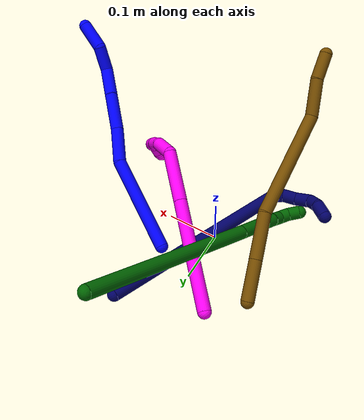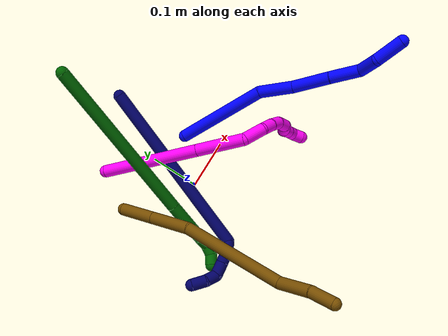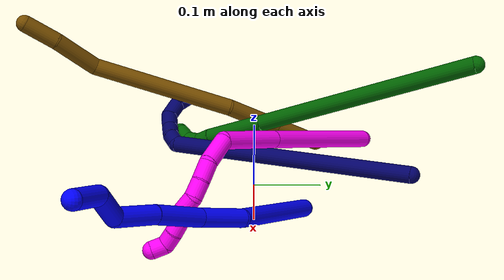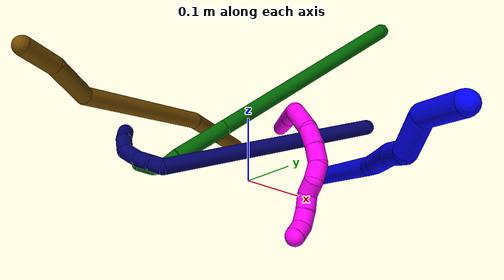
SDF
<sdf version="1.7">
 <world name="default">
  <model name="1">
   <static>0</static>
   <link name="1">
    <collision name="collision-cylinder-e_1_1_4">
     <pose>0.036717 -0.005946 0.086117 0.068931 0.402166 0.014056</pose>
     <geometry><cylinder><radius>0.0125</radius><length>0.187612</length></cylinder></geometry>
     <surface>
      <friction><ode><mu>1.16</mu><mu2>1.16</mu2><slip1>0</slip1><slip2>0</slip2></ode></friction>
      <contact><ode><kp>1e+06</kp><kd>1</kd><max_vel>0</max_vel><min_depth>0.001</min_depth></ode></contact>
     </surface>
    </collision>
    <visual name="visual-cylinder-e_1_1_4">
     <pose>0.036717 -0.005946 0.086117 0.068931 0.402166 0.014056</pose>
     <geometry><cylinder><radius>0.0125</radius><length>0.187612</length></cylinder></geometry>
     <material><ambient>0 0 1 1</ambient></material>
    </visual>
    <collision name="collision-cylinder-e_2_4_5">
     <pose>0.075753 -0.008967 0.207148 -0.083538 0.06611 -0.002764</pose>
     <geometry><cylinder><radius>0.0125</radius><length>0.070228</length></cylinder></geometry>
     <surface>
      <friction><ode><mu>1.16</mu><mu2>1.16</mu2><slip1>0</slip1><slip2>0</slip2></ode></friction>
      <contact><ode><kp>1e+06</kp><kd>1</kd><max_vel>0</max_vel><min_depth>0.001</min_depth></ode></contact>
     </surface>
    </collision>
    <visual name="visual-cylinder-e_2_4_5">
     <pose>0.075753 -0.008967 0.207148 -0.083538 0.06611 -0.002764</pose>
     <geometry><cylinder><radius>0.0125</radius><length>0.070228</length></cylinder></geometry>
     <material><ambient>0 0 1 1</ambient></material>
    </visual>
    <collision name="collision-cylinder-e_3_5_6">
     <pose>0.08496 -0.002168 0.279128 -0.104204 0.182741 -0.009556</pose>
     <geometry><cylinder><radius>0.0125</radius><length>0.075797</length></cylinder></geometry>
     <surface>
      <friction><ode><mu>1.16</mu><mu2>1.16</mu2><slip1>0</slip1><slip2>0</slip2></ode></friction>
      <contact><ode><kp>1e+06</kp><kd>1</kd><max_vel>0</max_vel><min_depth>0.001</min_depth></ode></contact>
     </surface>
    </collision>
    <visual name="visual-cylinder-e_3_5_6">
     <pose>0.08496 -0.002168 0.279128 -0.104204 0.182741 -0.009556</pose>
     <geometry><cylinder><radius>0.0125</radius><length>0.075797</length></cylinder></geometry>
     <material><ambient>0 0 1 1</ambient></material>
    </visual>
    <collision name="collision-cylinder-e_4_6_7">
     <pose>0.095518 0.001941 0.346478 -0.007658 0.120618 -0.000462</pose>
     <geometry><cylinder><radius>0.0125</radius><length>0.061013</length></cylinder></geometry>
     <surface>
      <friction><ode><mu>1.16</mu><mu2>1.16</mu2><slip1>0</slip1><slip2>0</slip2></ode></friction>
      <contact><ode><kp>1e+06</kp><kd>1</kd><max_vel>0</max_vel><min_depth>0.001</min_depth></ode></contact>
     </surface>
    </collision>
    <visual name="visual-cylinder-e_4_6_7">
     <pose>0.095518 0.001941 0.346478 -0.007658 0.120618 -0.000462</pose>
     <geometry><cylinder><radius>0.0125</radius><length>0.061013</length></cylinder></geometry>
     <material><ambient>0 0 1 1</ambient></material>
    </visual>
    <collision name="collision-cylinder-e_5_7_8">
     <pose>0.112862 0.013815 0.393311 -0.613069 0.594278 -0.19323</pose>
     <geometry><cylinder><radius>0.0125</radius><length>0.048843</length></cylinder></geometry>
     <surface>
      <friction><ode><mu>1.16</mu><mu2>1.16</mu2><slip1>0</slip1><slip2>0</slip2></ode></friction>
      <contact><ode><kp>1e+06</kp><kd>1</kd><max_vel>0</max_vel><min_depth>0.001</min_depth></ode></contact>
     </surface>
    </collision>
    <visual name="visual-cylinder-e_5_7_8">
     <pose>0.112862 0.013815 0.393311 -0.613069 0.594278 -0.19323</pose>
     <geometry><cylinder><radius>0.0125</radius><length>0.048843</length></cylinder></geometry>
     <material><ambient>0 0 1 1</ambient></material>
    </visual>
    <collision name="collision-cylinder-e_6_8_2">
     <pose>0.14027 0.022394 0.434361 0.124401 0.507599 0.032308</pose>
     <geometry><cylinder><radius>0.0125</radius><length>0.056508</length></cylinder></geometry>
     <surface>
      <friction><ode><mu>1.16</mu><mu2>1.16</mu2><slip1>0</slip1><slip2>0</slip2></ode></friction>
      <contact><ode><kp>1e+06</kp><kd>1</kd><max_vel>0</max_vel><min_depth>0.001</min_depth></ode></contact>
     </surface>
    </collision>
    <visual name="visual-cylinder-e_6_8_2">
     <pose>0.14027 0.022394 0.434361 0.124401 0.507599 0.032308</pose>
     <geometry><cylinder><radius>0.0125</radius><length>0.056508</length></cylinder></geometry>
     <material><ambient>0 0 1 1</ambient></material>
    </visual>
    <collision name="collision-sphere-2">
     <pose>0.154004 0.01933 0.458862 0 -0 0</pose>
     <geometry><sphere><radius>0.0125</radius></sphere></geometry>
     <surface>
      <friction><ode><mu>1.16</mu><mu2>1.16</mu2><slip1>0</slip1><slip2>0</slip2></ode></friction>
      <contact><ode><kp>1e+06</kp><kd>1</kd><max_vel>0</max_vel><min_depth>0.001</min_depth></ode></contact>
     </surface>
    </collision>
    <visual name="visual-sphere-2">
     <pose>0.154004 0.01933 0.458862 0 -0 0</pose>
     <geometry><sphere><radius>0.0125</radius></sphere></geometry>
     <material><ambient>0 0 1 1</ambient></material>
    </visual>
    <collision name="collision-sphere-4">
     <pose>0.073434 -0.011891 0.172233 0 -0 0</pose>
     <geometry><sphere><radius>0.0125</radius></sphere></geometry>
     <surface>
      <friction><ode><mu>1.16</mu><mu2>1.16</mu2><slip1>0</slip1><slip2>0</slip2></ode></friction>
      <contact><ode><kp>1e+06</kp><kd>1</kd><max_vel>0</max_vel><min_depth>0.001</min_depth></ode></contact>
     </surface>
    </collision>
    <visual name="visual-sphere-4">
     <pose>0.073434 -0.011891 0.172233 0 -0 0</pose>
     <geometry><sphere><radius>0.0125</radius></sphere></geometry>
     <material><ambient>0 0 1 1</ambient></material>
    </visual>
    <collision name="collision-sphere-1">
     <geometry><sphere><radius>0.0125</radius></sphere></geometry>
     <surface>
      <friction><ode><mu>1.16</mu><mu2>1.16</mu2><slip1>0</slip1><slip2>0</slip2></ode></friction>
      <contact><ode><kp>1e+06</kp><kd>1</kd><max_vel>0</max_vel><min_depth>0.001</min_depth></ode></contact>
     </surface>
    </collision>
    <visual name="visual-sphere-1">
     <geometry><sphere><radius>0.0125</radius></sphere></geometry>
     <material><ambient>0 0 1 1</ambient></material>
    </visual>
    <collision name="collision-sphere-8">
     <pose>0.126536 0.025458 0.409861 0 -0 0</pose>
     <geometry><sphere><radius>0.0125</radius></sphere></geometry>
     <surface>
      <friction><ode><mu>1.16</mu><mu2>1.16</mu2><slip1>0</slip1><slip2>0</slip2></ode></friction>
      <contact><ode><kp>1e+06</kp><kd>1</kd><max_vel>0</max_vel><min_depth>0.001</min_depth></ode></contact>
     </surface>
    </collision>
    <visual name="visual-sphere-8">
     <pose>0.126536 0.025458 0.409861 0 -0 0</pose>
     <geometry><sphere><radius>0.0125</radius></sphere></geometry>
     <material><ambient>0 0 1 1</ambient></material>
    </visual>
    <collision name="collision-sphere-5">
     <pose>0.078073 -0.006044 0.242063 0 -0 0</pose>
     <geometry><sphere><radius>0.0125</radius></sphere></geometry>
     <surface>
      <friction><ode><mu>1.16</mu><mu2>1.16</mu2><slip1>0</slip1><slip2>0</slip2></ode></friction>
      <contact><ode><kp>1e+06</kp><kd>1</kd><max_vel>0</max_vel><min_depth>0.001</min_depth></ode></contact>
     </surface>
    </collision>
    <visual name="visual-sphere-5">
     <pose>0.078073 -0.006044 0.242063 0 -0 0</pose>
     <geometry><sphere><radius>0.0125</radius></sphere></geometry>
     <material><ambient>0 0 1 1</ambient></material>
    </visual>
    <collision name="collision-sphere-6">
     <pose>0.091847 0.001709 0.316194 0 -0 0</pose>
     <geometry><sphere><radius>0.0125</radius></sphere></geometry>
     <surface>
      <friction><ode><mu>1.16</mu><mu2>1.16</mu2><slip1>0</slip1><slip2>0</slip2></ode></friction>
      <contact><ode><kp>1e+06</kp><kd>1</kd><max_vel>0</max_vel><min_depth>0.001</min_depth></ode></contact>
     </surface>
    </collision>
    <visual name="visual-sphere-6">
     <pose>0.091847 0.001709 0.316194 0 -0 0</pose>
     <geometry><sphere><radius>0.0125</radius></sphere></geometry>
     <material><ambient>0 0 1 1</ambient></material>
    </visual>
    <collision name="collision-sphere-7">
     <pose>0.099189 0.002173 0.376762 0 -0 0</pose>
     <geometry><sphere><radius>0.0125</radius></sphere></geometry>
     <surface>
      <friction><ode><mu>1.16</mu><mu2>1.16</mu2><slip1>0</slip1><slip2>0</slip2></ode></friction>
      <contact><ode><kp>1e+06</kp><kd>1</kd><max_vel>0</max_vel><min_depth>0.001</min_depth></ode></contact>
     </surface>
    </collision>
    <visual name="visual-sphere-7">
     <pose>0.099189 0.002173 0.376762 0 -0 0</pose>
     <geometry><sphere><radius>0.0125</radius></sphere></geometry>
     <material><ambient>0 0 1 1</ambient></material>
    </visual>
    <inertial>
     <pose>0.07583 0.000298 0.233512 0 -0 0</pose>
     <mass>0.5</mass>
     <inertia>
      <ixx>0.000646</ixx>
      <ixy>0</ixy>
      <ixz>0</ixz>
      <iyy>0.000682</iyy>
      <iyz>0</iyz>
      <izz>-0.000184</izz>
     </inertia>
    </inertial>
   </link>
   <pose>0.075754 0.072178 0.00497 1.27505 -0.570965 0.80849</pose>
  </model>
  <model name="6">
   <static>0</static>
   <link name="6">
    <collision name="collision-cylinder-e_1_1_4">
     <pose>-0.042393 -0.157639 -0.051329 1.88558 -0.250348 -0.343204</pose>
     <geometry><cylinder><radius>0.0125</radius><length>0.342238</length></cylinder></geometry>
     <surface>
      <friction><ode><mu>1.16</mu><mu2>1.16</mu2><slip1>0</slip1><slip2>0</slip2></ode></friction>
      <contact><ode><kp>1e+06</kp><kd>1</kd><max_vel>0</max_vel><min_depth>0.001</min_depth></ode></contact>
     </surface>
    </collision>
    <visual name="visual-cylinder-e_1_1_4">
     <pose>-0.042393 -0.157639 -0.051329 1.88558 -0.250348 -0.343204</pose>
     <geometry><cylinder><radius>0.0125</radius><length>0.342238</length></cylinder></geometry>
     <material><ambient>0 0.392157 0.003922 1</ambient></material>
    </visual>
    <collision name="collision-cylinder-e_2_4_5">
     <pose>-0.095509 -0.357553 -0.116471 1.8866 -0.236584 -0.324837</pose>
     <geometry><cylinder><radius>0.0125</radius><length>0.091498</length></cylinder></geometry>
     <surface>
      <friction><ode><mu>1.16</mu><mu2>1.16</mu2><slip1>0</slip1><slip2>0</slip2></ode></friction>
      <contact><ode><kp>1e+06</kp><kd>1</kd><max_vel>0</max_vel><min_depth>0.001</min_depth></ode></contact>
     </surface>
    </collision>
    <visual name="visual-cylinder-e_2_4_5">
     <pose>-0.095509 -0.357553 -0.116471 1.8866 -0.236584 -0.324837</pose>
     <geometry><cylinder><radius>0.0125</radius><length>0.091498</length></cylinder></geometry>
     <material><ambient>0 0.392157 0.003922 1</ambient></material>
    </visual>
    <collision name="collision-cylinder-e_3_5_6">
     <pose>-0.109707 -0.409726 -0.134673 1.98821 -0.310575 -0.472369</pose>
     <geometry><cylinder><radius>0.0125</radius><length>0.022743</length></cylinder></geometry>
     <surface>
      <friction><ode><mu>1.16</mu><mu2>1.16</mu2><slip1>0</slip1><slip2>0</slip2></ode></friction>
      <contact><ode><kp>1e+06</kp><kd>1</kd><max_vel>0</max_vel><min_depth>0.001</min_depth></ode></contact>
     </surface>
    </collision>
    <visual name="visual-cylinder-e_3_5_6">
     <pose>-0.109707 -0.409726 -0.134673 1.98821 -0.310575 -0.472369</pose>
     <geometry><cylinder><radius>0.0125</radius><length>0.022743</length></cylinder></geometry>
     <material><ambient>0 0.392157 0.003922 1</ambient></material>
    </visual>
    <collision name="collision-cylinder-e_4_6_7">
     <pose>-0.114647 -0.42995 -0.138287 1.49587 -0.140453 -0.130335</pose>
     <geometry><cylinder><radius>0.0125</radius><length>0.020917</length></cylinder></geometry>
     <surface>
      <friction><ode><mu>1.16</mu><mu2>1.16</mu2><slip1>0</slip1><slip2>0</slip2></ode></friction>
      <contact><ode><kp>1e+06</kp><kd>1</kd><max_vel>0</max_vel><min_depth>0.001</min_depth></ode></contact>
     </surface>
    </collision>
    <visual name="visual-cylinder-e_4_6_7">
     <pose>-0.114647 -0.42995 -0.138287 1.49587 -0.140453 -0.130335</pose>
     <geometry><cylinder><radius>0.0125</radius><length>0.020917</length></cylinder></geometry>
     <material><ambient>0 0.392157 0.003922 1</ambient></material>
    </visual>
    <collision name="collision-cylinder-e_5_7_2">
     <pose>-0.117466 -0.449508 -0.131135 0.966258 -0.120198 -0.063111</pose>
     <geometry><cylinder><radius>0.0125</radius><length>0.022603</length></cylinder></geometry>
     <surface>
      <friction><ode><mu>1.16</mu><mu2>1.16</mu2><slip1>0</slip1><slip2>0</slip2></ode></friction>
      <contact><ode><kp>1e+06</kp><kd>1</kd><max_vel>0</max_vel><min_depth>0.001</min_depth></ode></contact>
     </surface>
    </collision>
    <visual name="visual-cylinder-e_5_7_2">
     <pose>-0.117466 -0.449508 -0.131135 0.966258 -0.120198 -0.063111</pose>
     <geometry><cylinder><radius>0.0125</radius><length>0.022603</length></cylinder></geometry>
     <material><ambient>0 0.392157 0.003922 1</ambient></material>
    </visual>
    <collision name="collision-sphere-2">
     <pose>-0.118821 -0.45874 -0.124758 0 -0 0</pose>
     <geometry><sphere><radius>0.0125</radius></sphere></geometry>
     <surface>
      <friction><ode><mu>1.16</mu><mu2>1.16</mu2><slip1>0</slip1><slip2>0</slip2></ode></friction>
      <contact><ode><kp>1e+06</kp><kd>1</kd><max_vel>0</max_vel><min_depth>0.001</min_depth></ode></contact>
     </surface>
    </collision>
    <visual name="visual-sphere-2">
     <pose>-0.118821 -0.45874 -0.124758 0 -0 0</pose>
     <geometry><sphere><radius>0.0125</radius></sphere></geometry>
     <material><ambient>0 0.392157 0.003922 1</ambient></material>
    </visual>
    <collision name="collision-sphere-7">
     <pose>-0.116111 -0.440277 -0.137512 0 -0 0</pose>
     <geometry><sphere><radius>0.0125</radius></sphere></geometry>
     <surface>
      <friction><ode><mu>1.16</mu><mu2>1.16</mu2><slip1>0</slip1><slip2>0</slip2></ode></friction>
      <contact><ode><kp>1e+06</kp><kd>1</kd><max_vel>0</max_vel><min_depth>0.001</min_depth></ode></contact>
     </surface>
    </collision>
    <visual name="visual-sphere-7">
     <pose>-0.116111 -0.440277 -0.137512 0 -0 0</pose>
     <geometry><sphere><radius>0.0125</radius></sphere></geometry>
     <material><ambient>0 0.392157 0.003922 1</ambient></material>
    </visual>
    <collision name="collision-sphere-6">
     <pose>-0.113182 -0.419623 -0.139062 0 -0 0</pose>
     <geometry><sphere><radius>0.0125</radius></sphere></geometry>
     <surface>
      <friction><ode><mu>1.16</mu><mu2>1.16</mu2><slip1>0</slip1><slip2>0</slip2></ode></friction>
      <contact><ode><kp>1e+06</kp><kd>1</kd><max_vel>0</max_vel><min_depth>0.001</min_depth></ode></contact>
     </surface>
    </collision>
    <visual name="visual-sphere-6">
     <pose>-0.113182 -0.419623 -0.139062 0 -0 0</pose>
     <geometry><sphere><radius>0.0125</radius></sphere></geometry>
     <material><ambient>0 0.392157 0.003922 1</ambient></material>
    </visual>
    <collision name="collision-sphere-5">
     <pose>-0.106232 -0.399828 -0.130284 0 -0 0</pose>
     <geometry><sphere><radius>0.0125</radius></sphere></geometry>
     <surface>
      <friction><ode><mu>1.16</mu><mu2>1.16</mu2><slip1>0</slip1><slip2>0</slip2></ode></friction>
      <contact><ode><kp>1e+06</kp><kd>1</kd><max_vel>0</max_vel><min_depth>0.001</min_depth></ode></contact>
     </surface>
    </collision>
    <visual name="visual-sphere-5">
     <pose>-0.106232 -0.399828 -0.130284 0 -0 0</pose>
     <geometry><sphere><radius>0.0125</radius></sphere></geometry>
     <material><ambient>0 0.392157 0.003922 1</ambient></material>
    </visual>
    <collision name="collision-sphere-1">
     <geometry><sphere><radius>0.0125</radius></sphere></geometry>
     <surface>
      <friction><ode><mu>1.16</mu><mu2>1.16</mu2><slip1>0</slip1><slip2>0</slip2></ode></friction>
      <contact><ode><kp>1e+06</kp><kd>1</kd><max_vel>0</max_vel><min_depth>0.001</min_depth></ode></contact>
     </surface>
    </collision>
    <visual name="visual-sphere-1">
     <geometry><sphere><radius>0.0125</radius></sphere></geometry>
     <material><ambient>0 0.392157 0.003922 1</ambient></material>
    </visual>
    <collision name="collision-sphere-4">
     <pose>-0.084787 -0.315277 -0.102658 0 -0 0</pose>
     <geometry><sphere><radius>0.0125</radius></sphere></geometry>
     <surface>
      <friction><ode><mu>1.16</mu><mu2>1.16</mu2><slip1>0</slip1><slip2>0</slip2></ode></friction>
      <contact><ode><kp>1e+06</kp><kd>1</kd><max_vel>0</max_vel><min_depth>0.001</min_depth></ode></contact>
     </surface>
    </collision>
    <visual name="visual-sphere-4">
     <pose>-0.084787 -0.315277 -0.102658 0 -0 0</pose>
     <geometry><sphere><radius>0.0125</radius></sphere></geometry>
     <material><ambient>0 0.392157 0.003922 1</ambient></material>
    </visual>
    <inertial>
     <pose>-0.061592 -0.230275 -0.074286 0 -0 0</pose>
     <mass>0.5</mass>
     <inertia>
      <ixx>0.002002</ixx>
      <ixy>0</ixy>
      <ixz>0</ixz>
      <iyy>-0.001878</iyy>
      <iyz>0</iyz>
      <izz>0.003995</izz>
     </inertia>
    </inertial>
   </link>
   <pose>0.042013 0.305227 0.215246 0.052863 -0.888468 -0.459735</pose>
  </model>
  <model name="7">
   <static>0</static>
   <link name="7">
    <collision name="collision-cylinder-e_1_1_4">
     <pose>-0.102743 -0.152391 0.014791 1.47404 -0.591034 -0.539172</pose>
     <geometry><cylinder><radius>0.0125</radius><length>0.36877</length></cylinder></geometry>
     <surface>
      <friction><ode><mu>1.16</mu><mu2>1.16</mu2><slip1>0</slip1><slip2>0</slip2></ode></friction>
      <contact><ode><kp>1e+06</kp><kd>1</kd><max_vel>0</max_vel><min_depth>0.001</min_depth></ode></contact>
     </surface>
    </collision>
    <visual name="visual-cylinder-e_1_1_4">
     <pose>-0.102743 -0.152391 0.014791 1.47404 -0.591034 -0.539172</pose>
     <geometry><cylinder><radius>0.0125</radius><length>0.36877</length></cylinder></geometry>
     <material><ambient>0.003922 0 0.403922 1</ambient></material>
    </visual>
    <collision name="collision-cylinder-e_2_4_5">
     <pose>-0.214654 -0.307888 0.026166 2.40362 -1.10418 -2.02041</pose>
     <geometry><cylinder><radius>0.0125</radius><length>0.020531</length></cylinder></geometry>
     <surface>
      <friction><ode><mu>1.16</mu><mu2>1.16</mu2><slip1>0</slip1><slip2>0</slip2></ode></friction>
      <contact><ode><kp>1e+06</kp><kd>1</kd><max_vel>0</max_vel><min_depth>0.001</min_depth></ode></contact>
     </surface>
    </collision>
    <visual name="visual-cylinder-e_2_4_5">
     <pose>-0.214654 -0.307888 0.026166 2.40362 -1.10418 -2.02041</pose>
     <geometry><cylinder><radius>0.0125</radius><length>0.020531</length></cylinder></geometry>
     <material><ambient>0.003922 0 0.403922 1</ambient></material>
    </visual>
    <collision name="collision-cylinder-e_3_5_6">
     <pose>-0.233653 -0.312744 0.014401 2.93512 -0.856138 -2.69505</pose>
     <geometry><cylinder><radius>0.0125</radius><length>0.026032</length></cylinder></geometry>
     <surface>
      <friction><ode><mu>1.16</mu><mu2>1.16</mu2><slip1>0</slip1><slip2>0</slip2></ode></friction>
      <contact><ode><kp>1e+06</kp><kd>1</kd><max_vel>0</max_vel><min_depth>0.001</min_depth></ode></contact>
     </surface>
    </collision>
    <visual name="visual-cylinder-e_3_5_6">
     <pose>-0.233653 -0.312744 0.014401 2.93512 -0.856138 -2.69505</pose>
     <geometry><cylinder><radius>0.0125</radius><length>0.026032</length></cylinder></geometry>
     <material><ambient>0.003922 0 0.403922 1</ambient></material>
    </visual>
    <collision name="collision-cylinder-e_4_6_7">
     <pose>-0.25589 -0.314385 -0.001281 -3.12688 -1.03688 3.1158</pose>
     <geometry><cylinder><radius>0.0125</radius><length>0.028822</length></cylinder></geometry>
     <surface>
      <friction><ode><mu>1.16</mu><mu2>1.16</mu2><slip1>0</slip1><slip2>0</slip2></ode></friction>
      <contact><ode><kp>1e+06</kp><kd>1</kd><max_vel>0</max_vel><min_depth>0.001</min_depth></ode></contact>
     </surface>
    </collision>
    <visual name="visual-cylinder-e_4_6_7">
     <pose>-0.25589 -0.314385 -0.001281 -3.12688 -1.03688 3.1158</pose>
     <geometry><cylinder><radius>0.0125</radius><length>0.028822</length></cylinder></geometry>
     <material><ambient>0.003922 0 0.403922 1</ambient></material>
    </visual>
    <collision name="collision-cylinder-e_5_7_8">
     <pose>-0.276264 -0.306327 -0.014739 -2.22725 -0.671105 1.23337</pose>
     <geometry><cylinder><radius>0.0125</radius><length>0.02563</length></cylinder></geometry>
     <surface>
      <friction><ode><mu>1.16</mu><mu2>1.16</mu2><slip1>0</slip1><slip2>0</slip2></ode></friction>
      <contact><ode><kp>1e+06</kp><kd>1</kd><max_vel>0</max_vel><min_depth>0.001</min_depth></ode></contact>
     </surface>
    </collision>
    <visual name="visual-cylinder-e_5_7_8">
     <pose>-0.276264 -0.306327 -0.014739 -2.22725 -0.671105 1.23337</pose>
     <geometry><cylinder><radius>0.0125</radius><length>0.02563</length></cylinder></geometry>
     <material><ambient>0.003922 0 0.403922 1</ambient></material>
    </visual>
    <collision name="collision-cylinder-e_6_8_2">
     <pose>-0.289345 -0.289413 -0.031899 -2.45939 -0.345211 0.913055</pose>
     <geometry><cylinder><radius>0.0125</radius><length>0.030215</length></cylinder></geometry>
     <surface>
      <friction><ode><mu>1.16</mu><mu2>1.16</mu2><slip1>0</slip1><slip2>0</slip2></ode></friction>
      <contact><ode><kp>1e+06</kp><kd>1</kd><max_vel>0</max_vel><min_depth>0.001</min_depth></ode></contact>
     </surface>
    </collision>
    <visual name="visual-cylinder-e_6_8_2">
     <pose>-0.289345 -0.289413 -0.031899 -2.45939 -0.345211 0.913055</pose>
     <geometry><cylinder><radius>0.0125</radius><length>0.030215</length></cylinder></geometry>
     <material><ambient>0.003922 0 0.403922 1</ambient></material>
    </visual>
    <collision name="collision-sphere-2">
     <pose>-0.294458 -0.28045 -0.042933 0 -0 0</pose>
     <geometry><sphere><radius>0.0125</radius></sphere></geometry>
     <surface>
      <friction><ode><mu>1.16</mu><mu2>1.16</mu2><slip1>0</slip1><slip2>0</slip2></ode></friction>
      <contact><ode><kp>1e+06</kp><kd>1</kd><max_vel>0</max_vel><min_depth>0.001</min_depth></ode></contact>
     </surface>
    </collision>
    <visual name="visual-sphere-2">
     <pose>-0.294458 -0.28045 -0.042933 0 -0 0</pose>
     <geometry><sphere><radius>0.0125</radius></sphere></geometry>
     <material><ambient>0.003922 0 0.403922 1</ambient></material>
    </visual>
    <collision name="collision-sphere-4">
     <pose>-0.205486 -0.304781 0.029583 0 -0 0</pose>
     <geometry><sphere><radius>0.0125</radius></sphere></geometry>
     <surface>
      <friction><ode><mu>1.16</mu><mu2>1.16</mu2><slip1>0</slip1><slip2>0</slip2></ode></friction>
      <contact><ode><kp>1e+06</kp><kd>1</kd><max_vel>0</max_vel><min_depth>0.001</min_depth></ode></contact>
     </surface>
    </collision>
    <visual name="visual-sphere-4">
     <pose>-0.205486 -0.304781 0.029583 0 -0 0</pose>
     <geometry><sphere><radius>0.0125</radius></sphere></geometry>
     <material><ambient>0.003922 0 0.403922 1</ambient></material>
    </visual>
    <collision name="collision-sphere-1">
     <geometry><sphere><radius>0.0125</radius></sphere></geometry>
     <surface>
      <friction><ode><mu>1.16</mu><mu2>1.16</mu2><slip1>0</slip1><slip2>0</slip2></ode></friction>
      <contact><ode><kp>1e+06</kp><kd>1</kd><max_vel>0</max_vel><min_depth>0.001</min_depth></ode></contact>
     </surface>
    </collision>
    <visual name="visual-sphere-1">
     <geometry><sphere><radius>0.0125</radius></sphere></geometry>
     <material><ambient>0.003922 0 0.403922 1</ambient></material>
    </visual>
    <collision name="collision-sphere-8">
     <pose>-0.284233 -0.298376 -0.020864 0 -0 0</pose>
     <geometry><sphere><radius>0.0125</radius></sphere></geometry>
     <surface>
      <friction><ode><mu>1.16</mu><mu2>1.16</mu2><slip1>0</slip1><slip2>0</slip2></ode></friction>
      <contact><ode><kp>1e+06</kp><kd>1</kd><max_vel>0</max_vel><min_depth>0.001</min_depth></ode></contact>
     </surface>
    </collision>
    <visual name="visual-sphere-8">
     <pose>-0.284233 -0.298376 -0.020864 0 -0 0</pose>
     <geometry><sphere><radius>0.0125</radius></sphere></geometry>
     <material><ambient>0.003922 0 0.403922 1</ambient></material>
    </visual>
    <collision name="collision-sphere-5">
     <pose>-0.223822 -0.310995 0.02275 0 -0 0</pose>
     <geometry><sphere><radius>0.0125</radius></sphere></geometry>
     <surface>
      <friction><ode><mu>1.16</mu><mu2>1.16</mu2><slip1>0</slip1><slip2>0</slip2></ode></friction>
      <contact><ode><kp>1e+06</kp><kd>1</kd><max_vel>0</max_vel><min_depth>0.001</min_depth></ode></contact>
     </surface>
    </collision>
    <visual name="visual-sphere-5">
     <pose>-0.223822 -0.310995 0.02275 0 -0 0</pose>
     <geometry><sphere><radius>0.0125</radius></sphere></geometry>
     <material><ambient>0.003922 0 0.403922 1</ambient></material>
    </visual>
    <collision name="collision-sphere-6">
     <pose>-0.243484 -0.314493 0.006052 0 -0 0</pose>
     <geometry><sphere><radius>0.0125</radius></sphere></geometry>
     <surface>
      <friction><ode><mu>1.16</mu><mu2>1.16</mu2><slip1>0</slip1><slip2>0</slip2></ode></friction>
      <contact><ode><kp>1e+06</kp><kd>1</kd><max_vel>0</max_vel><min_depth>0.001</min_depth></ode></contact>
     </surface>
    </collision>
    <visual name="visual-sphere-6">
     <pose>-0.243484 -0.314493 0.006052 0 -0 0</pose>
     <geometry><sphere><radius>0.0125</radius></sphere></geometry>
     <material><ambient>0.003922 0 0.403922 1</ambient></material>
    </visual>
    <collision name="collision-sphere-7">
     <pose>-0.268295 -0.314277 -0.008614 0 -0 0</pose>
     <geometry><sphere><radius>0.0125</radius></sphere></geometry>
     <surface>
      <friction><ode><mu>1.16</mu><mu2>1.16</mu2><slip1>0</slip1><slip2>0</slip2></ode></friction>
      <contact><ode><kp>1e+06</kp><kd>1</kd><max_vel>0</max_vel><min_depth>0.001</min_depth></ode></contact>
     </surface>
    </collision>
    <visual name="visual-sphere-7">
     <pose>-0.268295 -0.314277 -0.008614 0 -0 0</pose>
     <geometry><sphere><radius>0.0125</radius></sphere></geometry>
     <material><ambient>0.003922 0 0.403922 1</ambient></material>
    </visual>
    <inertial>
     <pose>-0.143153 -0.192633 0.009976 0 -0 0</pose>
     <mass>0.5</mass>
     <inertia>
      <ixx>0.00118</ixx>
      <ixy>0</ixy>
      <ixz>0</ixz>
      <iyy>-0.000259</iyy>
      <iyz>0</iyz>
      <izz>0.005805</izz>
     </inertia>
    </inertial>
   </link>
   <pose>0.071324 0.223334 0.057822 0.784674 0.685214 0.502953</pose>
  </model>
  <model name="10">
   <static>0</static>
   <link name="10">
    <collision name="collision-cylinder-e_1_1_4">
     <pose>0.007213 -0.043837 -0.09102 2.69276 0.071276 0.309883</pose>
     <geometry><cylinder><radius>0.0125</radius><length>0.202568</length></cylinder></geometry>
     <surface>
      <friction><ode><mu>1.16</mu><mu2>1.16</mu2><slip1>0</slip1><slip2>0</slip2></ode></friction>
      <contact><ode><kp>1e+06</kp><kd>1</kd><max_vel>0</max_vel><min_depth>0.001</min_depth></ode></contact>
     </surface>
    </collision>
    <visual name="visual-cylinder-e_1_1_4">
     <pose>0.007213 -0.043837 -0.09102 2.69276 0.071276 0.309883</pose>
     <geometry><cylinder><radius>0.0125</radius><length>0.202568</length></cylinder></geometry>
     <material><ambient>1 0 0.964706 1</ambient></material>
    </visual>
    <collision name="collision-cylinder-e_2_4_5">
     <pose>0.017381 -0.109037 -0.226286 2.69178 0.060067 0.26114</pose>
     <geometry><cylinder><radius>0.0125</radius><length>0.098443</length></cylinder></geometry>
     <surface>
      <friction><ode><mu>1.16</mu><mu2>1.16</mu2><slip1>0</slip1><slip2>0</slip2></ode></friction>
      <contact><ode><kp>1e+06</kp><kd>1</kd><max_vel>0</max_vel><min_depth>0.001</min_depth></ode></contact>
     </surface>
    </collision>
    <visual name="visual-cylinder-e_2_4_5">
     <pose>0.017381 -0.109037 -0.226286 2.69178 0.060067 0.26114</pose>
     <geometry><cylinder><radius>0.0125</radius><length>0.098443</length></cylinder></geometry>
     <material><ambient>1 0 0.964706 1</ambient></material>
    </visual>
    <collision name="collision-cylinder-e_3_5_6">
     <pose>0.007176 -0.135856 -0.287486 2.83023 -0.636308 -2.25215</pose>
     <geometry><cylinder><radius>0.0125</radius><length>0.044291</length></cylinder></geometry>
     <surface>
      <friction><ode><mu>1.16</mu><mu2>1.16</mu2><slip1>0</slip1><slip2>0</slip2></ode></friction>
      <contact><ode><kp>1e+06</kp><kd>1</kd><max_vel>0</max_vel><min_depth>0.001</min_depth></ode></contact>
     </surface>
    </collision>
    <visual name="visual-cylinder-e_3_5_6">
     <pose>0.007176 -0.135856 -0.287486 2.83023 -0.636308 -2.25215</pose>
     <geometry><cylinder><radius>0.0125</radius><length>0.044291</length></cylinder></geometry>
     <material><ambient>1 0 0.964706 1</ambient></material>
    </visual>
    <collision name="collision-cylinder-e_4_6_7">
     <pose>-0.017506 -0.144921 -0.310592 2.6111 -1.01662 -2.23427</pose>
     <geometry><cylinder><radius>0.0125</radius><length>0.027101</length></cylinder></geometry>
     <surface>
      <friction><ode><mu>1.16</mu><mu2>1.16</mu2><slip1>0</slip1><slip2>0</slip2></ode></friction>
      <contact><ode><kp>1e+06</kp><kd>1</kd><max_vel>0</max_vel><min_depth>0.001</min_depth></ode></contact>
     </surface>
    </collision>
    <visual name="visual-cylinder-e_4_6_7">
     <pose>-0.017506 -0.144921 -0.310592 2.6111 -1.01662 -2.23427</pose>
     <geometry><cylinder><radius>0.0125</radius><length>0.027101</length></cylinder></geometry>
     <material><ambient>1 0 0.964706 1</ambient></material>
    </visual>
    <collision name="collision-cylinder-e_5_7_8">
     <pose>-0.039691 -0.152833 -0.320921 2.34126 -1.05834 -1.88921</pose>
     <geometry><cylinder><radius>0.0125</radius><length>0.024469</length></cylinder></geometry>
     <surface>
      <friction><ode><mu>1.16</mu><mu2>1.16</mu2><slip1>0</slip1><slip2>0</slip2></ode></friction>
      <contact><ode><kp>1e+06</kp><kd>1</kd><max_vel>0</max_vel><min_depth>0.001</min_depth></ode></contact>
     </surface>
    </collision>
    <visual name="visual-cylinder-e_5_7_8">
     <pose>-0.039691 -0.152833 -0.320921 2.34126 -1.05834 -1.88921</pose>
     <geometry><cylinder><radius>0.0125</radius><length>0.024469</length></cylinder></geometry>
     <material><ambient>1 0 0.964706 1</ambient></material>
    </visual>
    <collision name="collision-cylinder-e_6_8_9">
     <pose>-0.058859 -0.164777 -0.325919 1.67769 -0.836107 -0.918404</pose>
     <geometry><cylinder><radius>0.0125</radius><length>0.022922</length></cylinder></geometry>
     <surface>
      <friction><ode><mu>1.16</mu><mu2>1.16</mu2><slip1>0</slip1><slip2>0</slip2></ode></friction>
      <contact><ode><kp>1e+06</kp><kd>1</kd><max_vel>0</max_vel><min_depth>0.001</min_depth></ode></contact>
     </surface>
    </collision>
    <visual name="visual-cylinder-e_6_8_9">
     <pose>-0.058859 -0.164777 -0.325919 1.67769 -0.836107 -0.918404</pose>
     <geometry><cylinder><radius>0.0125</radius><length>0.022922</length></cylinder></geometry>
     <material><ambient>1 0 0.964706 1</ambient></material>
    </visual>
    <collision name="collision-cylinder-e_7_9_10">
     <pose>-0.074582 -0.176225 -0.320896 0.577776 -0.802603 -0.250898</pose>
     <geometry><cylinder><radius>0.0125</radius><length>0.020075</length></cylinder></geometry>
     <surface>
      <friction><ode><mu>1.16</mu><mu2>1.16</mu2><slip1>0</slip1><slip2>0</slip2></ode></friction>
      <contact><ode><kp>1e+06</kp><kd>1</kd><max_vel>0</max_vel><min_depth>0.001</min_depth></ode></contact>
     </surface>
    </collision>
    <visual name="visual-cylinder-e_7_9_10">
     <pose>-0.074582 -0.176225 -0.320896 0.577776 -0.802603 -0.250898</pose>
     <geometry><cylinder><radius>0.0125</radius><length>0.020075</length></cylinder></geometry>
     <material><ambient>1 0 0.964706 1</ambient></material>
    </visual>
    <collision name="collision-cylinder-e_8_10_11">
     <pose>-0.090264 -0.185315 -0.315869 1.72406 -1.00768 -1.14288</pose>
     <geometry><cylinder><radius>0.0125</radius><length>0.020018</length></cylinder></geometry>
     <surface>
      <friction><ode><mu>1.16</mu><mu2>1.16</mu2><slip1>0</slip1><slip2>0</slip2></ode></friction>
      <contact><ode><kp>1e+06</kp><kd>1</kd><max_vel>0</max_vel><min_depth>0.001</min_depth></ode></contact>
     </surface>
    </collision>
    <visual name="visual-cylinder-e_8_10_11">
     <pose>-0.090264 -0.185315 -0.315869 1.72406 -1.00768 -1.14288</pose>
     <geometry><cylinder><radius>0.0125</radius><length>0.020018</length></cylinder></geometry>
     <material><ambient>1 0 0.964706 1</ambient></material>
    </visual>
    <collision name="collision-cylinder-e_9_11_12">
     <pose>-0.106706 -0.196672 -0.316588 1.55483 -0.919811 -0.907173</pose>
     <geometry><cylinder><radius>0.0125</radius><length>0.02006</length></cylinder></geometry>
     <surface>
      <friction><ode><mu>1.16</mu><mu2>1.16</mu2><slip1>0</slip1><slip2>0</slip2></ode></friction>
      <contact><ode><kp>1e+06</kp><kd>1</kd><max_vel>0</max_vel><min_depth>0.001</min_depth></ode></contact>
     </surface>
    </collision>
    <visual name="visual-cylinder-e_9_11_12">
     <pose>-0.106706 -0.196672 -0.316588 1.55483 -0.919811 -0.907173</pose>
     <geometry><cylinder><radius>0.0125</radius><length>0.02006</length></cylinder></geometry>
     <material><ambient>1 0 0.964706 1</ambient></material>
    </visual>
    <collision name="collision-cylinder-e_10_12_2">
     <pose>-0.117875 -0.211527 -0.32014 1.9648 -0.323753 -0.480062</pose>
     <geometry><cylinder><radius>0.0125</radius><length>0.020054</length></cylinder></geometry>
     <surface>
      <friction><ode><mu>1.16</mu><mu2>1.16</mu2><slip1>0</slip1><slip2>0</slip2></ode></friction>
      <contact><ode><kp>1e+06</kp><kd>1</kd><max_vel>0</max_vel><min_depth>0.001</min_depth></ode></contact>
     </surface>
    </collision>
    <visual name="visual-cylinder-e_10_12_2">
     <pose>-0.117875 -0.211527 -0.32014 1.9648 -0.323753 -0.480062</pose>
     <geometry><cylinder><radius>0.0125</radius><length>0.020054</length></cylinder></geometry>
     <material><ambient>1 0 0.964706 1</ambient></material>
    </visual>
    <collision name="collision-sphere-2">
     <pose>-0.121065 -0.220305 -0.323789 0 -0 0</pose>
     <geometry><sphere><radius>0.0125</radius></sphere></geometry>
     <surface>
      <friction><ode><mu>1.16</mu><mu2>1.16</mu2><slip1>0</slip1><slip2>0</slip2></ode></friction>
      <contact><ode><kp>1e+06</kp><kd>1</kd><max_vel>0</max_vel><min_depth>0.001</min_depth></ode></contact>
     </surface>
    </collision>
    <visual name="visual-sphere-2">
     <pose>-0.121065 -0.220305 -0.323789 0 -0 0</pose>
     <geometry><sphere><radius>0.0125</radius></sphere></geometry>
     <material><ambient>1 0 0.964706 1</ambient></material>
    </visual>
    <collision name="collision-sphere-12">
     <pose>-0.114685 -0.20275 -0.316491 0 -0 0</pose>
     <geometry><sphere><radius>0.0125</radius></sphere></geometry>
     <surface>
      <friction><ode><mu>1.16</mu><mu2>1.16</mu2><slip1>0</slip1><slip2>0</slip2></ode></friction>
      <contact><ode><kp>1e+06</kp><kd>1</kd><max_vel>0</max_vel><min_depth>0.001</min_depth></ode></contact>
     </surface>
    </collision>
    <visual name="visual-sphere-12">
     <pose>-0.114685 -0.20275 -0.316491 0 -0 0</pose>
     <geometry><sphere><radius>0.0125</radius></sphere></geometry>
     <material><ambient>1 0 0.964706 1</ambient></material>
    </visual>
    <collision name="collision-sphere-11">
     <pose>-0.098727 -0.190595 -0.316685 0 -0 0</pose>
     <geometry><sphere><radius>0.0125</radius></sphere></geometry>
     <surface>
      <friction><ode><mu>1.16</mu><mu2>1.16</mu2><slip1>0</slip1><slip2>0</slip2></ode></friction>
      <contact><ode><kp>1e+06</kp><kd>1</kd><max_vel>0</max_vel><min_depth>0.001</min_depth></ode></contact>
     </surface>
    </collision>
    <visual name="visual-sphere-11">
     <pose>-0.098727 -0.190595 -0.316685 0 -0 0</pose>
     <geometry><sphere><radius>0.0125</radius></sphere></geometry>
     <material><ambient>1 0 0.964706 1</ambient></material>
    </visual>
    <collision name="collision-sphere-10">
     <pose>-0.081801 -0.180035 -0.315054 0 -0 0</pose>
     <geometry><sphere><radius>0.0125</radius></sphere></geometry>
     <surface>
      <friction><ode><mu>1.16</mu><mu2>1.16</mu2><slip1>0</slip1><slip2>0</slip2></ode></friction>
      <contact><ode><kp>1e+06</kp><kd>1</kd><max_vel>0</max_vel><min_depth>0.001</min_depth></ode></contact>
     </surface>
    </collision>
    <visual name="visual-sphere-10">
     <pose>-0.081801 -0.180035 -0.315054 0 -0 0</pose>
     <geometry><sphere><radius>0.0125</radius></sphere></geometry>
     <material><ambient>1 0 0.964706 1</ambient></material>
    </visual>
    <collision name="collision-sphere-9">
     <pose>-0.067363 -0.172416 -0.326738 0 -0 0</pose>
     <geometry><sphere><radius>0.0125</radius></sphere></geometry>
     <surface>
      <friction><ode><mu>1.16</mu><mu2>1.16</mu2><slip1>0</slip1><slip2>0</slip2></ode></friction>
      <contact><ode><kp>1e+06</kp><kd>1</kd><max_vel>0</max_vel><min_depth>0.001</min_depth></ode></contact>
     </surface>
    </collision>
    <visual name="visual-sphere-9">
     <pose>-0.067363 -0.172416 -0.326738 0 -0 0</pose>
     <geometry><sphere><radius>0.0125</radius></sphere></geometry>
     <material><ambient>1 0 0.964706 1</ambient></material>
    </visual>
    <collision name="collision-sphere-4">
     <pose>0.014426 -0.087674 -0.182041 0 -0 0</pose>
     <geometry><sphere><radius>0.0125</radius></sphere></geometry>
     <surface>
      <friction><ode><mu>1.16</mu><mu2>1.16</mu2><slip1>0</slip1><slip2>0</slip2></ode></friction>
      <contact><ode><kp>1e+06</kp><kd>1</kd><max_vel>0</max_vel><min_depth>0.001</min_depth></ode></contact>
     </surface>
    </collision>
    <visual name="visual-sphere-4">
     <pose>0.014426 -0.087674 -0.182041 0 -0 0</pose>
     <geometry><sphere><radius>0.0125</radius></sphere></geometry>
     <material><ambient>1 0 0.964706 1</ambient></material>
    </visual>
    <collision name="collision-sphere-1">
     <geometry><sphere><radius>0.0125</radius></sphere></geometry>
     <surface>
      <friction><ode><mu>1.16</mu><mu2>1.16</mu2><slip1>0</slip1><slip2>0</slip2></ode></friction>
      <contact><ode><kp>1e+06</kp><kd>1</kd><max_vel>0</max_vel><min_depth>0.001</min_depth></ode></contact>
     </surface>
    </collision>
    <visual name="visual-sphere-1">
     <geometry><sphere><radius>0.0125</radius></sphere></geometry>
     <material><ambient>1 0 0.964706 1</ambient></material>
    </visual>
    <collision name="collision-sphere-8">
     <pose>-0.050354 -0.157138 -0.325099 0 -0 0</pose>
     <geometry><sphere><radius>0.0125</radius></sphere></geometry>
     <surface>
      <friction><ode><mu>1.16</mu><mu2>1.16</mu2><slip1>0</slip1><slip2>0</slip2></ode></friction>
      <contact><ode><kp>1e+06</kp><kd>1</kd><max_vel>0</max_vel><min_depth>0.001</min_depth></ode></contact>
     </surface>
    </collision>
    <visual name="visual-sphere-8">
     <pose>-0.050354 -0.157138 -0.325099 0 -0 0</pose>
     <geometry><sphere><radius>0.0125</radius></sphere></geometry>
     <material><ambient>1 0 0.964706 1</ambient></material>
    </visual>
    <collision name="collision-sphere-5">
     <pose>0.020336 -0.130399 -0.270531 0 -0 0</pose>
     <geometry><sphere><radius>0.0125</radius></sphere></geometry>
     <surface>
      <friction><ode><mu>1.16</mu><mu2>1.16</mu2><slip1>0</slip1><slip2>0</slip2></ode></friction>
      <contact><ode><kp>1e+06</kp><kd>1</kd><max_vel>0</max_vel><min_depth>0.001</min_depth></ode></contact>
     </surface>
    </collision>
    <visual name="visual-sphere-5">
     <pose>0.020336 -0.130399 -0.270531 0 -0 0</pose>
     <geometry><sphere><radius>0.0125</radius></sphere></geometry>
     <material><ambient>1 0 0.964706 1</ambient></material>
    </visual>
    <collision name="collision-sphere-6">
     <pose>-0.005984 -0.141313 -0.304442 0 -0 0</pose>
     <geometry><sphere><radius>0.0125</radius></sphere></geometry>
     <surface>
      <friction><ode><mu>1.16</mu><mu2>1.16</mu2><slip1>0</slip1><slip2>0</slip2></ode></friction>
      <contact><ode><kp>1e+06</kp><kd>1</kd><max_vel>0</max_vel><min_depth>0.001</min_depth></ode></contact>
     </surface>
    </collision>
    <visual name="visual-sphere-6">
     <pose>-0.005984 -0.141313 -0.304442 0 -0 0</pose>
     <geometry><sphere><radius>0.0125</radius></sphere></geometry>
     <material><ambient>1 0 0.964706 1</ambient></material>
    </visual>
    <collision name="collision-sphere-7">
     <pose>-0.029029 -0.148529 -0.316743 0 -0 0</pose>
     <geometry><sphere><radius>0.0125</radius></sphere></geometry>
     <surface>
      <friction><ode><mu>1.16</mu><mu2>1.16</mu2><slip1>0</slip1><slip2>0</slip2></ode></friction>
      <contact><ode><kp>1e+06</kp><kd>1</kd><max_vel>0</max_vel><min_depth>0.001</min_depth></ode></contact>
     </surface>
    </collision>
    <visual name="visual-sphere-7">
     <pose>-0.029029 -0.148529 -0.316743 0 -0 0</pose>
     <geometry><sphere><radius>0.0125</radius></sphere></geometry>
     <material><ambient>1 0 0.964706 1</ambient></material>
    </visual>
    <inertial>
     <pose>-0.014227 -0.105019 -0.205447 0 -0 0</pose>
     <mass>0.5</mass>
     <inertia>
      <ixx>0.000958</ixx>
      <ixy>0</ixy>
      <ixz>0</ixz>
      <iyy>-0.000445</iyy>
      <iyz>0</iyz>
      <izz>0.000282</izz>
     </inertia>
    </inertial>
   </link>
   <pose>-0.073518 0.167037 0.042027 2.72376 -1.16648 -3.02454</pose>
  </model>
  <model name="12">
   <static>0</static>
   <link name="12">
    <collision name="collision-cylinder-e_1_1_4">
     <pose>0.011398 -0.018837 0.030835 0.548409 0.305561 0.086572</pose>
     <geometry><cylinder><radius>0.0125</radius><length>0.075777</length></cylinder></geometry>
     <surface>
      <friction><ode><mu>1.16</mu><mu2>1.16</mu2><slip1>0</slip1><slip2>0</slip2></ode></friction>
      <contact><ode><kp>1e+06</kp><kd>1</kd><max_vel>0</max_vel><min_depth>0.001</min_depth></ode></contact>
     </surface>
    </collision>
    <visual name="visual-cylinder-e_1_1_4">
     <pose>0.011398 -0.018837 0.030835 0.548409 0.305561 0.086572</pose>
     <geometry><cylinder><radius>0.0125</radius><length>0.075777</length></cylinder></geometry>
     <material><ambient>0.466667 0.301961 0 1</ambient></material>
    </visual>
    <collision name="collision-cylinder-e_2_4_5">
     <pose>0.035952 -0.059137 0.096892 0.547244 0.308754 0.087295</pose>
     <geometry><cylinder><radius>0.0125</radius><length>0.086587</length></cylinder></geometry>
     <surface>
      <friction><ode><mu>1.16</mu><mu2>1.16</mu2><slip1>0</slip1><slip2>0</slip2></ode></friction>
      <contact><ode><kp>1e+06</kp><kd>1</kd><max_vel>0</max_vel><min_depth>0.001</min_depth></ode></contact>
     </surface>
    </collision>
    <visual name="visual-cylinder-e_2_4_5">
     <pose>0.035952 -0.059137 0.096892 0.547244 0.308754 0.087295</pose>
     <geometry><cylinder><radius>0.0125</radius><length>0.086587</length></cylinder></geometry>
     <material><ambient>0.466667 0.301961 0 1</ambient></material>
    </visual>
    <collision name="collision-cylinder-e_3_5_6">
     <pose>0.055078 -0.122118 0.230067 0.400915 0.056063 0.011394</pose>
     <geometry><cylinder><radius>0.0125</radius><length>0.21311</length></cylinder></geometry>
     <surface>
      <friction><ode><mu>1.16</mu><mu2>1.16</mu2><slip1>0</slip1><slip2>0</slip2></ode></friction>
      <contact><ode><kp>1e+06</kp><kd>1</kd><max_vel>0</max_vel><min_depth>0.001</min_depth></ode></contact>
     </surface>
    </collision>
    <visual name="visual-cylinder-e_3_5_6">
     <pose>0.055078 -0.122118 0.230067 0.400915 0.056063 0.011394</pose>
     <geometry><cylinder><radius>0.0125</radius><length>0.21311</length></cylinder></geometry>
     <material><ambient>0.466667 0.301961 0 1</ambient></material>
    </visual>
    <collision name="collision-cylinder-e_4_6_7">
     <pose>0.078864 -0.178242 0.355921 0.482226 0.514795 0.129278</pose>
     <geometry><cylinder><radius>0.0125</radius><length>0.072367</length></cylinder></geometry>
     <surface>
      <friction><ode><mu>1.16</mu><mu2>1.16</mu2><slip1>0</slip1><slip2>0</slip2></ode></friction>
      <contact><ode><kp>1e+06</kp><kd>1</kd><max_vel>0</max_vel><min_depth>0.001</min_depth></ode></contact>
     </surface>
    </collision>
    <visual name="visual-cylinder-e_4_6_7">
     <pose>0.078864 -0.178242 0.355921 0.482226 0.514795 0.129278</pose>
     <geometry><cylinder><radius>0.0125</radius><length>0.072367</length></cylinder></geometry>
     <material><ambient>0.466667 0.301961 0 1</ambient></material>
    </visual>
    <collision name="collision-cylinder-e_5_7_2">
     <pose>0.1048 -0.201762 0.406947 0.367947 0.31667 0.059405</pose>
     <geometry><cylinder><radius>0.0125</radius><length>0.052159</length></cylinder></geometry>
     <surface>
      <friction><ode><mu>1.16</mu><mu2>1.16</mu2><slip1>0</slip1><slip2>0</slip2></ode></friction>
      <contact><ode><kp>1e+06</kp><kd>1</kd><max_vel>0</max_vel><min_depth>0.001</min_depth></ode></contact>
     </surface>
    </collision>
    <visual name="visual-cylinder-e_5_7_2">
     <pose>0.1048 -0.201762 0.406947 0.367947 0.31667 0.059405</pose>
     <geometry><cylinder><radius>0.0125</radius><length>0.052159</length></cylinder></geometry>
     <material><ambient>0.466667 0.301961 0 1</ambient></material>
    </visual>
    <collision name="collision-sphere-2">
     <pose>0.112921 -0.210676 0.430071 0 -0 0</pose>
     <geometry><sphere><radius>0.0125</radius></sphere></geometry>
     <surface>
      <friction><ode><mu>1.16</mu><mu2>1.16</mu2><slip1>0</slip1><slip2>0</slip2></ode></friction>
      <contact><ode><kp>1e+06</kp><kd>1</kd><max_vel>0</max_vel><min_depth>0.001</min_depth></ode></contact>
     </surface>
    </collision>
    <visual name="visual-sphere-2">
     <pose>0.112921 -0.210676 0.430071 0 -0 0</pose>
     <geometry><sphere><radius>0.0125</radius></sphere></geometry>
     <material><ambient>0.466667 0.301961 0 1</ambient></material>
    </visual>
    <collision name="collision-sphere-7">
     <pose>0.096679 -0.192847 0.383823 0 -0 0</pose>
     <geometry><sphere><radius>0.0125</radius></sphere></geometry>
     <surface>
      <friction><ode><mu>1.16</mu><mu2>1.16</mu2><slip1>0</slip1><slip2>0</slip2></ode></friction>
      <contact><ode><kp>1e+06</kp><kd>1</kd><max_vel>0</max_vel><min_depth>0.001</min_depth></ode></contact>
     </surface>
    </collision>
    <visual name="visual-sphere-7">
     <pose>0.096679 -0.192847 0.383823 0 -0 0</pose>
     <geometry><sphere><radius>0.0125</radius></sphere></geometry>
     <material><ambient>0.466667 0.301961 0 1</ambient></material>
    </visual>
    <collision name="collision-sphere-6">
     <pose>0.061049 -0.163637 0.328018 0 -0 0</pose>
     <geometry><sphere><radius>0.0125</radius></sphere></geometry>
     <surface>
      <friction><ode><mu>1.16</mu><mu2>1.16</mu2><slip1>0</slip1><slip2>0</slip2></ode></friction>
      <contact><ode><kp>1e+06</kp><kd>1</kd><max_vel>0</max_vel><min_depth>0.001</min_depth></ode></contact>
     </surface>
    </collision>
    <visual name="visual-sphere-6">
     <pose>0.061049 -0.163637 0.328018 0 -0 0</pose>
     <geometry><sphere><radius>0.0125</radius></sphere></geometry>
     <material><ambient>0.466667 0.301961 0 1</ambient></material>
    </visual>
    <collision name="collision-sphere-5">
     <pose>0.049107 -0.080599 0.132115 0 -0 0</pose>
     <geometry><sphere><radius>0.0125</radius></sphere></geometry>
     <surface>
      <friction><ode><mu>1.16</mu><mu2>1.16</mu2><slip1>0</slip1><slip2>0</slip2></ode></friction>
      <contact><ode><kp>1e+06</kp><kd>1</kd><max_vel>0</max_vel><min_depth>0.001</min_depth></ode></contact>
     </surface>
    </collision>
    <visual name="visual-sphere-5">
     <pose>0.049107 -0.080599 0.132115 0 -0 0</pose>
     <geometry><sphere><radius>0.0125</radius></sphere></geometry>
     <material><ambient>0.466667 0.301961 0 1</ambient></material>
    </visual>
    <collision name="collision-sphere-1">
     <geometry><sphere><radius>0.0125</radius></sphere></geometry>
     <surface>
      <friction><ode><mu>1.16</mu><mu2>1.16</mu2><slip1>0</slip1><slip2>0</slip2></ode></friction>
      <contact><ode><kp>1e+06</kp><kd>1</kd><max_vel>0</max_vel><min_depth>0.001</min_depth></ode></contact>
     </surface>
    </collision>
    <visual name="visual-sphere-1">
     <geometry><sphere><radius>0.0125</radius></sphere></geometry>
     <material><ambient>0.466667 0.301961 0 1</ambient></material>
    </visual>
    <collision name="collision-sphere-4">
     <pose>0.022796 -0.037675 0.061669 0 -0 0</pose>
     <geometry><sphere><radius>0.0125</radius></sphere></geometry>
     <surface>
      <friction><ode><mu>1.16</mu><mu2>1.16</mu2><slip1>0</slip1><slip2>0</slip2></ode></friction>
      <contact><ode><kp>1e+06</kp><kd>1</kd><max_vel>0</max_vel><min_depth>0.001</min_depth></ode></contact>
     </surface>
    </collision>
    <visual name="visual-sphere-4">
     <pose>0.022796 -0.037675 0.061669 0 -0 0</pose>
     <geometry><sphere><radius>0.0125</radius></sphere></geometry>
     <material><ambient>0.466667 0.301961 0 1</ambient></material>
    </visual>
    <inertial>
     <pose>0.053775 -0.11199 0.213477 0 -0 0</pose>
     <mass>0.5</mass>
     <inertia>
      <ixx>0.000979</ixx>
      <ixy>0</ixy>
      <ixz>0</ixz>
      <iyy>0.000884</iyy>
      <iyz>0</iyz>
      <izz>0.000322</izz>
     </inertia>
    </inertial>
   </link>
   <pose>-0.121533 0.097645 0.011905 0.487732 -1.11322 0.642898</pose>
  </model>
 </world>
</sdf>
